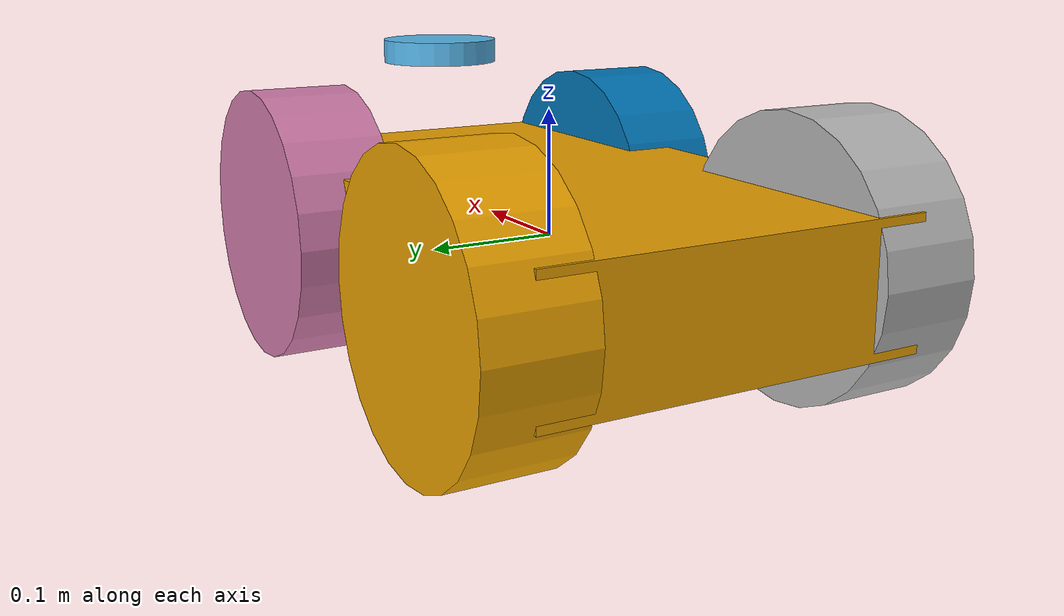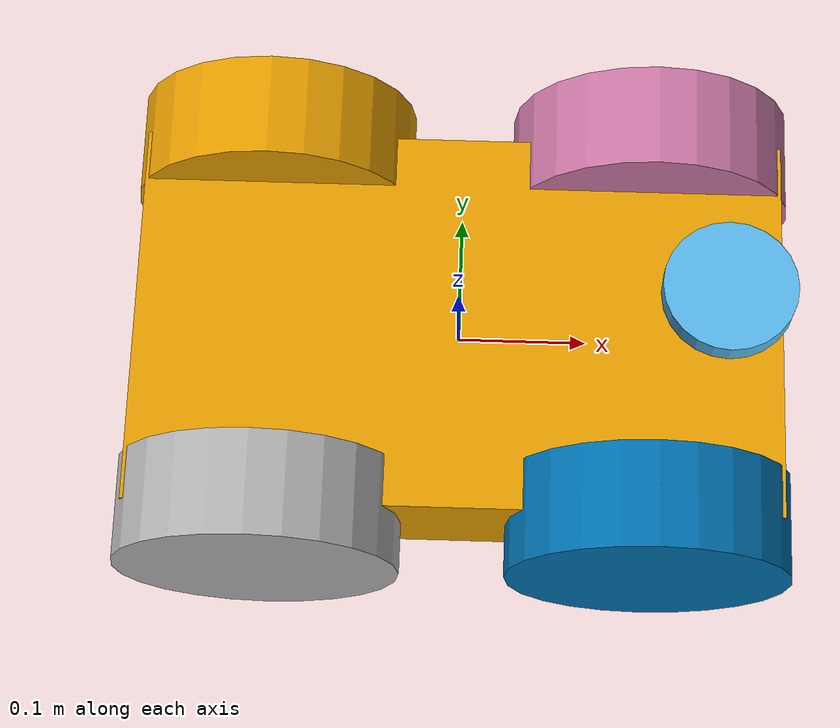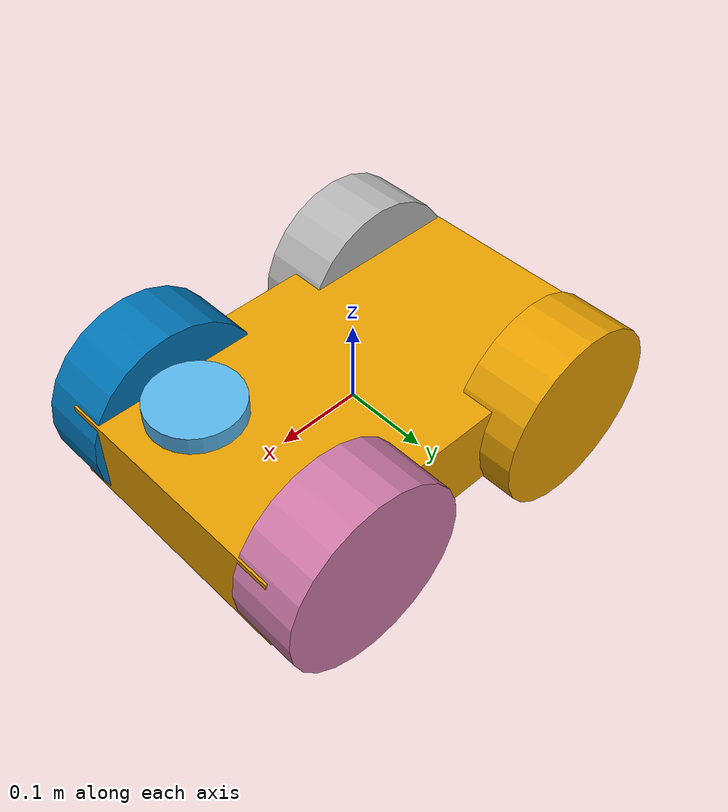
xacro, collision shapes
<?xml version="1.0"?>
<robot name="qingzhou" xmlns:xacro="http://wiki.ros.org/xacro">
  <!-- Include xacro for inertials, materials and wheels -->
  <xacro:include filename="$(find qingzhou_description)/urdf/wheel.xacro"/>

  <!-- Gazebo plugins -->
  <gazebo>
    <!-- Load ros_control plugin using the qingzhou_hardware_gazebo
    implementation of the hardware_interface::RobotHW -->
    <plugin name="gazebo_ros_control" filename="libgazebo_ros_control.so">
      <robotSimType>steer_bot_hardware_gazebo/SteerBotHardwareGazebo</robotSimType>
      <commandTopic>${tf_prefix}cmd_vel</commandTopic>
      <odometryFrame>${tf_prefix}odom</odometryFrame>
      <odometryTopic>${tf_prefix}odom</odometryTopic>
      <odometrySource>world</odometrySource>
      <robotBaseFrame>${tf_prefix}base_link</robotBaseFrame>
      <legacyModeNS>false</legacyModeNS>
    </plugin>
  </gazebo>

  <!-- Math constants -->
  <xacro:property name="deg_to_rad" value="0.01745329251994329577"/>
  <xacro:property name="M_PI" value="3.14159"/>

  <!-- Robot base dimensions -->
  <xacro:property name="base_length" value="0.5" />
  <xacro:property name="base_width" value="0.3" />
  <xacro:property name="base_height" value="0.1" />
  <xacro:property name="base_mass" value="5" />

  <!-- Wheel link dimensions -->
  <xacro:property name="wheel_radius" value="0.11" />
  <xacro:property name="wheel_thickness" value="0.08" />
  <xacro:property name="wheel_mass" value="1" />

  <!-- Steering link dimensions -->
  <xacro:property name="steer_radius" value="0.05" />
  <xacro:property name="steer_thickness" value="0.02" />
  <xacro:property name="steer_mass" value="1" />

  <!-- Axle positions -->
  <xacro:property name="axle_offset" value="0.05" />
  <xacro:property name="steer_offset" value="0.02" />
  <xacro:property name="chassis_height" value="0.045" />

  <!-- Base link -->
  <link name="base_link">
    <visual>
      <origin xyz="0 0 0" rpy="0 0 0"/>
      <geometry>
        <mesh filename="package://qingzhou_description/meshes/base_link.dae" />
      </geometry>
    </visual>
    <collision>
      <origin xyz="0 0 0" rpy="0 0 0"/>
      <geometry>
        <box size="${base_length} ${base_width} ${base_height}"/>
      </geometry>
    </collision>
    <xacro:solid_cuboid_inertial
        rpy="0 0 0" xyz="0 0 0"
        mass="${base_mass}"
        x="${base_length}" y="${base_width}" z="${base_height}" />
  </link>

  <!-- Front steer and rear wheel joints required for ackermann_steering_controller -->
  <xacro:front_steer
    name="front"
    parent="base"
    steer_radius="${steer_radius}"
    steer_thickness="${steer_thickness}"
    steer_mass="${steer_mass}"
    base_length="${base_length}"
    base_width="${base_width}"
    axle_offset="${axle_offset}"
    steer_height="${wheel_radius+steer_offset}">
  </xacro:front_steer>

  <xacro:rear_wheel
    name="rear"
    parent="base"
    wheel_radius="${wheel_radius/4}"
    wheel_thickness="${wheel_thickness/2}"
    wheel_mass="${wheel_mass/32}">
    <origin xyz="${-base_length/2+axle_offset} 0 0" rpy="${-90 * deg_to_rad} 0 0"/>
  </xacro:rear_wheel>

  <!-- Steerable front wheels -->
  <xacro:front_wheel_lr
    name="front_right"
    parent="base"
    reflect="-1"
    wheel_radius="${wheel_radius}"
    wheel_thickness="${wheel_thickness}"
    wheel_mass="${wheel_mass}"
    steer_radius="${steer_radius}"
    steer_thickness="${steer_thickness}"
    steer_mass="${steer_mass}"
    base_length="${base_length}"
    base_width="${base_width}"
    axle_offset="${axle_offset}"
    steer_height="${wheel_radius+steer_offset}">
  </xacro:front_wheel_lr>
  <xacro:front_wheel_lr
    name="front_left"
    parent="base"
    reflect="1"
    wheel_radius="${wheel_radius}"
    wheel_thickness="${wheel_thickness}"
    wheel_mass="${wheel_mass}"
    steer_radius="${steer_radius}"
    steer_thickness="${steer_thickness}"
    steer_mass="${steer_mass}"
    base_length="${base_length}"
    base_width="${base_width}"
    axle_offset="${axle_offset}"
    steer_height="${wheel_radius+steer_offset}">
  </xacro:front_wheel_lr>

  <!-- Rear wheels -->
  <xacro:rear_wheel_lr
    name="rear_right"
    parent="base"
    wheel_radius="${wheel_radius}"
    wheel_thickness="${wheel_thickness}"
    wheel_mass="${wheel_mass}">
    <origin xyz="${-base_length/2+axle_offset*2} ${-base_width/2} 0" rpy="${-90 * deg_to_rad} 0 0"/>
  </xacro:rear_wheel_lr>
  <xacro:rear_wheel_lr
    name="rear_left"
    parent="base"
    wheel_radius="${wheel_radius}"
    wheel_thickness="${wheel_thickness}"
    wheel_mass="${wheel_mass}">
    <origin xyz="${-base_length/2+axle_offset*2} ${+base_width/2} 0" rpy="${-90 * deg_to_rad} 0 0"/>
  </xacro:rear_wheel_lr>

    <link name="ydlidar_link">
        <visual>
        <origin rpy="0 0 ${-M_PI/2}" xyz= "0 0 0.0135" />
        <geometry>
            <mesh filename="package://qingzhou_description/meshes/ydlidar_x4.dae" />
        </geometry>
        </visual>
    </link>

    <joint name="ydlidar_joint" type="fixed">
        <axis xyz="0 0 1"/>
        <origin xyz="0.145 0 ${base_height+0.015}"/>
        <parent link="base_link"/>
        <child link="ydlidar_link"/>
    </joint>

      <link name="camera_link">
        <origin xyz="0 0 0" rpy="0 0 0"/>
        <geometry>
          <cylinder radius="0.0001" length="0.0001"/>
        </geometry>
      </link>

    <joint name="camera_joint" type="fixed">
        <axis xyz="1 0 0"/>
        <origin xyz="${base_length/2+0.05} 0 ${ base_height - 0.025}"/>
        <parent link="base_link"/>
        <child link="camera_link"/>
    </joint>

    <link name="imu_link">
          <origin xyz="0 0 0" rpy="0 0 0"/>
        <geometry>
          <cylinder radius="0.0001" length="0.0001"/>
        </geometry>
    </link>

    <joint name="imu_joint" type="fixed">
        <origin rpy="0 0 ${-M_PI/2}" xyz="-0.08 0 ${chassis_height + base_height/2}"/>
        <parent link="base_link"/>
        <child link="imu_link"/>
    </joint>

  <xacro:include filename="$(find qingzhou_description)/urdf/sensor.xacro"/>

</robot>

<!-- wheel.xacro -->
<robot name="wheel" xmlns:xacro="http://wiki.ros.org/xacro">
  <!-- Include xacro for materials and inertials -->
  <xacro:include filename="$(find qingzhou_description)/urdf/materials.xacro"/>
  <xacro:include filename="$(find qingzhou_description)/urdf/inertials.xacro"/>

  <!-- Properties -->
  <xacro:property name="steer_effort" value="10.0"/>
  <xacro:property name="steer_velocity" value="5.0"/>
  <xacro:property name="steer_limit_deg" value="45.0"/>

  <!-- Bicycle model front steering link (required for steer_drive_controller) -->
  <xacro:macro name="front_steer"
    params="
      name
      parent
      steer_radius
      steer_thickness
      steer_mass
      base_length
      base_width
      axle_offset
      steer_height">
      <!-- bycile steer link-->
    <link name="${name}_steer_link">
      <visual>
        <origin xyz="0 0 0" rpy="0 0 0"/>
        <geometry>
          <cylinder radius="${0.000001}" length="${0.000001}"/>
        </geometry>
      </visual>
      <collision>
        <origin xyz="0 0 0" rpy="0 0 0"/>
        <geometry>
          <cylinder radius="${steer_radius}" length="${steer_thickness}"/>
        </geometry>
      </collision>
      <xacro:solid_cylinder_inertial
          rpy="0 0 0" xyz="0 0 0"
          mass="${steer_mass}"
          radius="${steer_radius}" length="${steer_thickness}" />
    </link>

    <joint name="${name}_steer_joint" type="revolute">
      <parent link="${parent}_link"/>
      <child link="${name}_steer_link"/>
      <origin xyz="${base_length/2-axle_offset} 0 ${steer_height}" rpy="0 0 0"/>
      <axis xyz="0 0 1"/>
      <limit effort="${steer_effort}"
             lower="${-180.0 * deg_to_rad}" upper="${180.0 * deg_to_rad}"
             velocity="${steer_velocity}"/>
    </joint>

    <transmission name="${name}_steer_joint_trans">
      <type>transmission_interface/SimpleTransmission</type>
      <actuator name="${name}_steer_joint_motor">
        <mechanicalReduction>1</mechanicalReduction>
        <hardwareInterface>hardware_interface/PositionJointInterface</hardwareInterface>
      </actuator>
      <joint name="${name}_steer_joint">
        <hardwareInterface>hardware_interface/PositionJointInterface</hardwareInterface>
      </joint>
    </transmission>

  </xacro:macro>

  <!-- Car steering model front (steerable) wheel links (left/right) -->
  <xacro:macro name="front_wheel_lr"
    params="
      name
      parent
      reflect
      wheel_radius
      wheel_thickness
      wheel_mass
      steer_radius
      steer_thickness
      steer_mass
      base_length
      base_width
      axle_offset
      steer_height">
    <link name="${name}_steer_link">
      <visual>
        <origin xyz="0 0 0" rpy="0 0 0"/>
        <geometry>
          <cylinder radius="0.0001" length="0.0001"/>
        </geometry>
      </visual>
      <collision>
        <origin xyz="0 0 0" rpy="0 0 0"/>
        <geometry>
          <cylinder radius="0.0001" length="0.0001"/>
        </geometry>
      </collision>
      <xacro:solid_cylinder_inertial
          rpy="0 0 0" xyz="0 0 0"
          mass="${steer_mass}"
          radius="${steer_radius}" length="${steer_thickness}" />
    </link>

    <joint name="${name}_steer_joint" type="revolute">
      <parent link="${parent}_link"/>
      <child link="${name}_steer_link"/>
      <origin xyz="${base_length/2-axle_offset*2} ${reflect*(base_width/2)} ${steer_height}" rpy="0 0 0"/>
      <axis xyz="0 0 1"/>
      <limit effort="${steer_effort}"
             lower="${steer_limit_deg * deg_to_rad * -1.0}" upper="${steer_limit_deg * deg_to_rad}"
             velocity="${steer_velocity}"/>
    </joint>

    <link name="${name}_wheel_link">
      <visual>
        <origin xyz="0 0 0" rpy="0 0 0"/>
        <geometry>
          <mesh filename="package://qingzhou_description/meshes/wheel.dae" />
        </geometry>
      </visual>
      <collision>
        <origin xyz="0 0 0" rpy="0 0 0"/>
        <geometry>
          <cylinder radius="${wheel_radius}" length="${wheel_thickness}"/>
        </geometry>
      </collision>
      <xacro:solid_cylinder_inertial
          rpy="0 0 0" xyz="0 0 0"
          mass="${wheel_mass}"
          radius="${wheel_radius}" length="${wheel_thickness}" />
    </link>

    <joint name="${name}_wheel_joint" type="continuous">
      <parent link="${name}_steer_link"/>
      <child link="${name}_wheel_link"/>
      <origin xyz="0 0 ${-steer_height}" rpy="${-90 * deg_to_rad} 0 0"/>
      <axis xyz="0 0 1"/>
    </joint>

    <transmission name="${name}_steer_joint_trans">
      <type>transmission_interface/SimpleTransmission</type>
      <actuator name="${name}_steer_joint_motor">
        <mechanicalReduction>1</mechanicalReduction>
        <hardwareInterface>hardware_interface/PositionJointInterface</hardwareInterface>
      </actuator>
      <joint name="${name}_steer_joint">
        <hardwareInterface>hardware_interface/PositionJointInterface</hardwareInterface>
      </joint>
    </transmission>

    <transmission name="${name}_wheel_joint_trans">
      <type>transmission_interface/SimpleTransmission</type>
      <actuator name="${name}_wheel_joint_motor">
        <mechanicalReduction>1</mechanicalReduction>
        <hardwareInterface>hardware_interface/VelocityJointInterface</hardwareInterface>
      </actuator>
      <joint name="${name}_wheel_joint">
        <hardwareInterface>hardware_interface/VelocityJointInterface</hardwareInterface>
      </joint>
    </transmission>

  </xacro:macro>

  <!-- Bicycle model rear wheel link (required for steer_drive_controller) -->
  <xacro:macro name="rear_wheel"
    params="
      name
      parent
      wheel_radius
      wheel_thickness
      wheel_mass
      *origin">
    <link name="${name}_wheel_link">
      <visual>
        <origin xyz="0 0 0" rpy="0 0 0"/>
        <geometry>
          <cylinder radius="0.0001" length="0.0001"/>
        </geometry>
        <material name="yellow" />
      </visual>
      <collision>
        <origin xyz="0 0 0" rpy="0 0 0"/>
        <geometry>
          <cylinder radius="0.0001" length="0.0001"/>
        </geometry>
      </collision>
      <xacro:solid_cylinder_inertial
          rpy="0 0 0" xyz="0 0 0"
          mass="${wheel_mass}"
          radius="${wheel_radius}" length="${wheel_thickness}" />
    </link>

    <joint name="${name}_wheel_joint" type="continuous">
      <parent link="${parent}_link"/>
      <child link="${name}_wheel_link"/>
      <xacro:insert_block name="origin"/>
      <axis xyz="0 0 1"/>
    </joint>

    <transmission name="${name}_wheel_joint_trans">
      <type>transmission_interface/SimpleTransmission</type>
      <actuator name="${name}_wheel_joint_motor">
        <mechanicalReduction>1</mechanicalReduction>
        <hardwareInterface>hardware_interface/VelocityJointInterface</hardwareInterface>
      </actuator>
      <joint name="${name}_wheel_joint">
        <hardwareInterface>hardware_interface/VelocityJointInterface</hardwareInterface>
      </joint>
    </transmission>

  </xacro:macro>

  <!-- Bicycle model front wheel link (passive - no transmission) -->
  <xacro:macro name="front_wheel"
    params="
      name
      parent
      wheel_radius
      wheel_thickness
      wheel_mass
      *origin">
    <link name="${name}_wheel_link">
      <visual>
        <origin xyz="0 0 0" rpy="0 0 0"/>
        <geometry>
          <cylinder radius="${wheel_radius}" length="${wheel_thickness}"/>
        </geometry>
        <material name="yellow" />
      </visual>
      <collision>
        <origin xyz="0 0 0" rpy="0 0 0"/>
        <geometry>
          <cylinder radius="${wheel_radius}" length="${wheel_thickness}"/>
        </geometry>
      </collision>
      <xacro:solid_cylinder_inertial
          rpy="0 0 0" xyz="0 0 0"
          mass="${wheel_mass}"
          radius="${wheel_radius}" length="${wheel_thickness}" />
    </link>

    <joint name="${name}_wheel_joint" type="continuous">
      <parent link="${parent}_link"/>
      <child link="${name}_wheel_link"/>
      <xacro:insert_block name="origin"/>
      <axis xyz="0 0 1"/>
    </joint>

  </xacro:macro>

  <!-- Car steering model rear wheel links (left/right) -->
  <xacro:macro name="rear_wheel_lr"
    params="
      name
      parent
      wheel_radius
      wheel_thickness
      wheel_mass
      *origin">
    <link name="${name}_wheel_link">
      <visual>
        <origin xyz="0 0 0" rpy="0 0 0"/>
        <geometry>
          <mesh filename="package://qingzhou_description/meshes/wheel.dae" />
        </geometry>
      </visual>
      <collision>
        <origin xyz="0 0 0" rpy="0 0 0"/>
        <geometry>
          <cylinder radius="${wheel_radius}" length="${wheel_thickness}"/>
        </geometry>
      </collision>
      <xacro:solid_cylinder_inertial
          rpy="0 0 0" xyz="0 0 0"
          mass="${wheel_mass}"
          radius="${wheel_radius}" length="${wheel_thickness}" />
    </link>

    <joint name="${name}_wheel_joint" type="continuous">
      <parent link="${parent}_link"/>
      <child link="${name}_wheel_link"/>
      <xacro:insert_block name="origin"/>
      <axis xyz="0 0 1"/>
    </joint>

    <transmission name="${name}_wheel_joint_trans">
      <type>transmission_interface/SimpleTransmission</type>
      <actuator name="${name}_wheel_joint_motor">
        <mechanicalReduction>1</mechanicalReduction>
        <hardwareInterface>hardware_interface/VelocityJointInterface</hardwareInterface>
      </actuator>
      <joint name="${name}_wheel_joint">
        <hardwareInterface>hardware_interface/VelocityJointInterface</hardwareInterface>
      </joint>
    </transmission>

  </xacro:macro>
</robot>

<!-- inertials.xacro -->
<!--  xacro macros for inertials.

    Define xacro macros for math constants and inertials:

    - solid cuboid
    - solid cylinder
    - null (a placeholder inertial for logical link elements)
 -->
<robot name="inertials" xmlns:xacro="http://wiki.ros.org/xacro">

    <!-- Math constants -->
    <xacro:property name="math_pi"        value="3.141592653589793" />
    <xacro:property name="math_pi_over_2" value="1.5707963267948966" />
    <xacro:property name="math_pi_over_4" value="0.785398163397448" />

    <!-- Inertial for solid cuboid with dimensions x y z  -->
    <xacro:macro name="solid_cuboid_inertial" params="rpy xyz mass x y z">
        <inertial>
            <origin rpy="${rpy}" xyz="${xyz}"/>
            <mass value="${mass}" />
            <inertia
                ixx="${mass * (y * y + z * z) / 12.0}" ixy="0.0" ixz="0.0"
                iyy="${mass * (x * x + z * z) / 12.0}" iyz="0.0"
                izz="${mass * (x * x + y * y) / 12.0}" />
        </inertial>
    </xacro:macro>

    <!-- Inertial for solid cylinder with radius and length aligned to z-axis  -->
    <xacro:macro name="solid_cylinder_inertial" params="rpy xyz mass radius length">
        <inertial>
            <origin rpy="${rpy}" xyz="${xyz}"/>
            <mass value="${mass}" />
            <inertia
                ixx="${mass * (3.0 * radius * radius + length * length) / 12.0}" ixy="0.0" ixz="0.0"
                iyy="${mass * (3.0 * radius * radius + length * length) / 12.0}" iyz="0.0"
                izz="${mass * (radius * radius) / 2.0}" />
        </inertial>
    </xacro:macro>

    <!-- A null inertial - used in placeholder links to esure the model will work in Gazebo -->
    <xacro:macro name="null_inertial">
        <inertial>
            <mass value="0.001"/>
            <inertia ixx="0.001" ixy="0" ixz="0" iyy="0.001" iyz="0" izz="0.001"/>
        </inertial>
    </xacro:macro>
</robot>
